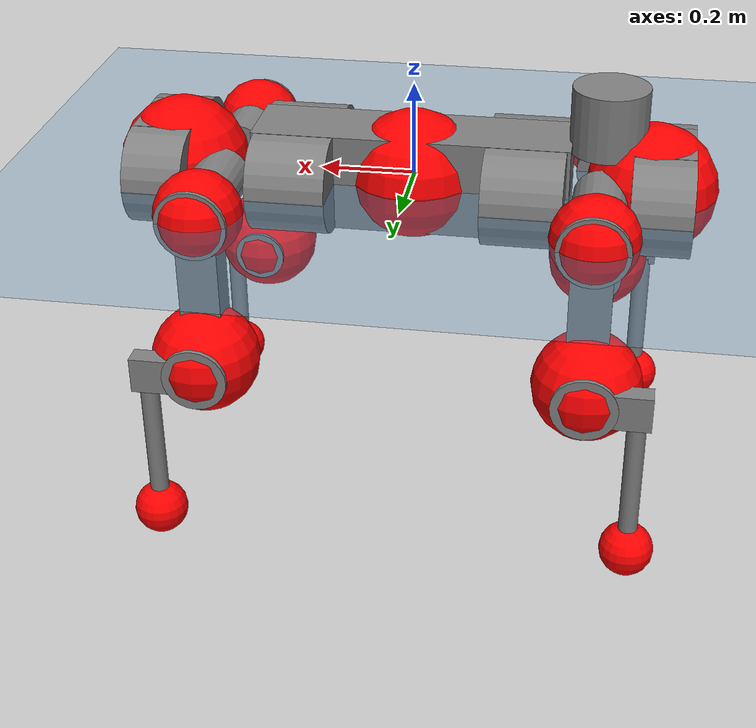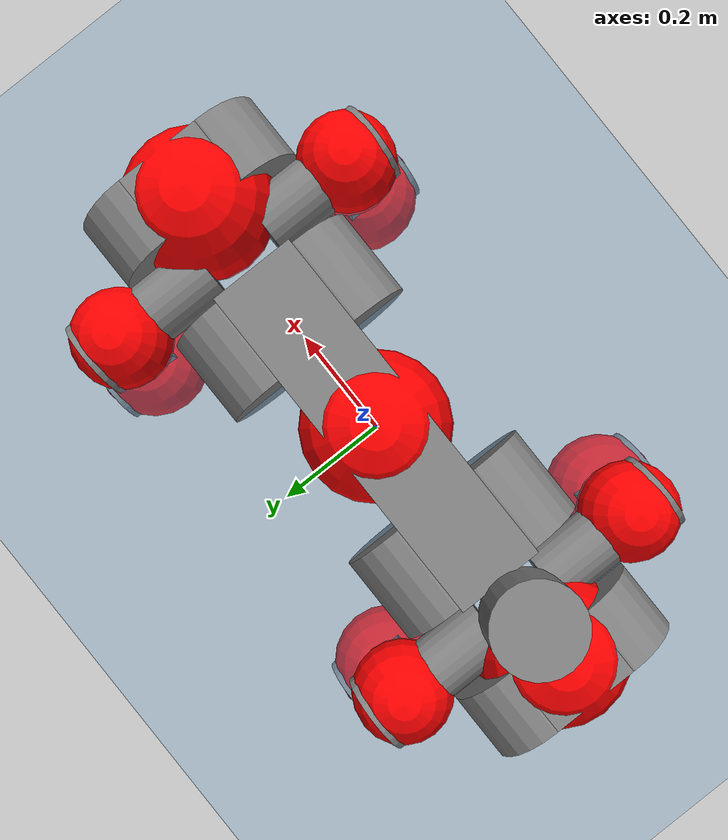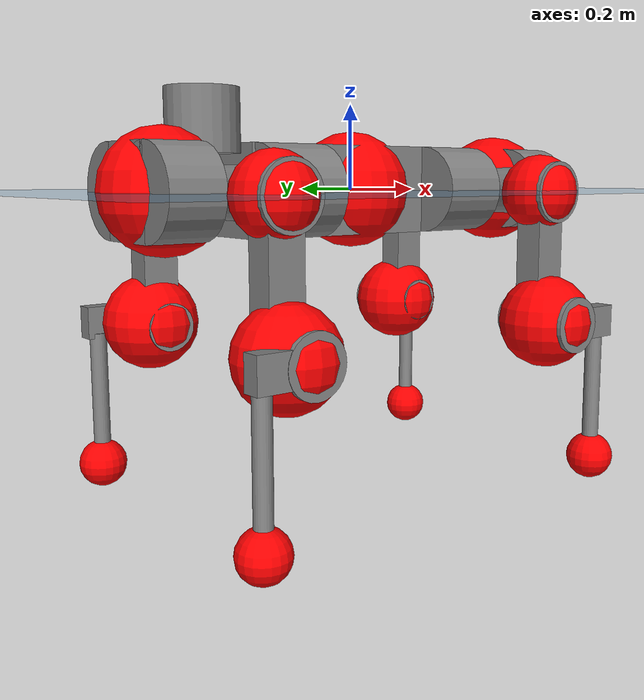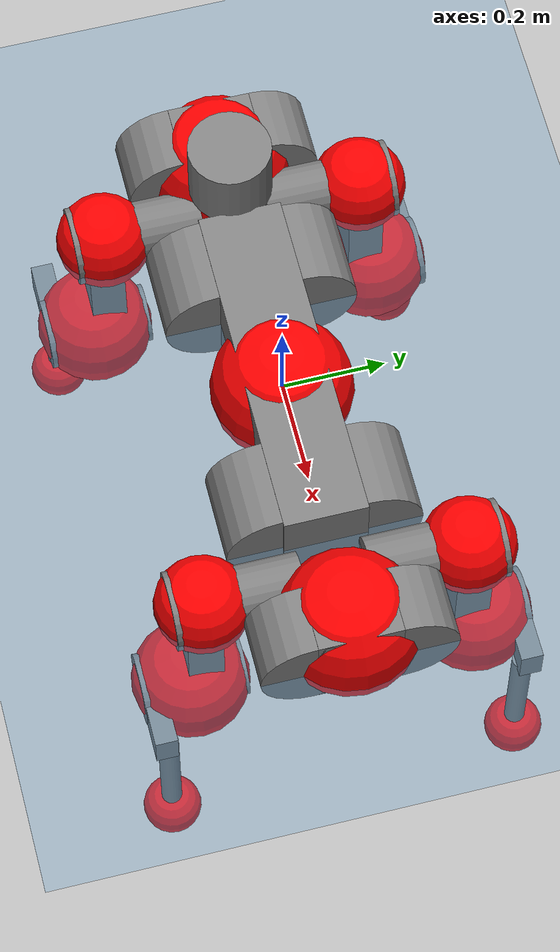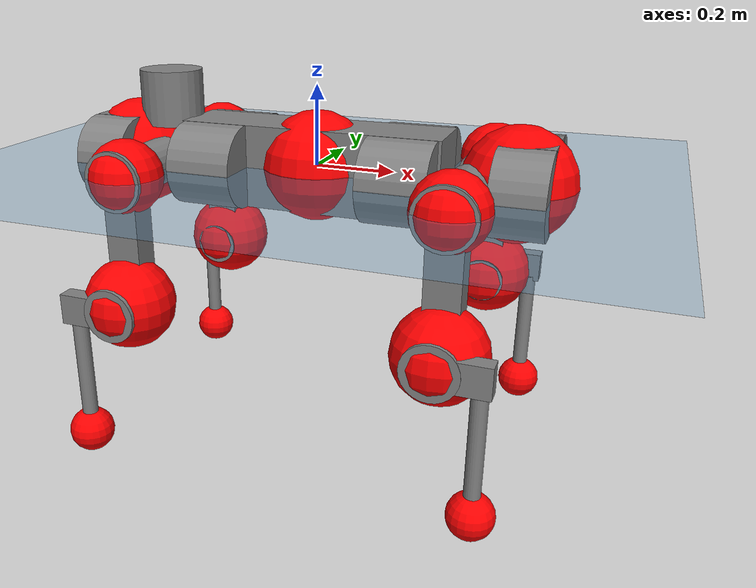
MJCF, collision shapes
<mujoco model="anymal_c">
  <compiler angle="radian" assetdir="assets" balanceinertia="true" inertiafromgeom="false"/>

  <option timestep="0.005" density="1.2" viscosity="2e-05"/>

  <size nkey="1"/>

  <visual>
    <quality shadowsize="8192"/>
    <map shadowclip="0.5"/>
  </visual>

  <default>
    <default class="/">
      <material specular="0" shininess="0.25"/>
      <geom contype="0" conaffinity="0" group="1" solref="-1000 -80"/>
      <site size="0.01 0.005 0.005" group="5"/>
      <general forcelimited="true" forcerange="-80 80" biastype="affine" gainprm="80" biasprm="0 -80 -2"/>
      <default class="anymal_c">
        <joint armature="0.01" damping="0.01" frictionloss="0.1"/>
        <default class="visual">
          <geom type="mesh" group="2"/>
          <default class="visual_zflip"/>
        </default>
        <default class="collision">
          <geom type="cylinder" group="3"/>
          <default class="foot">
            <geom size="0.03 0 0" type="sphere" condim="6" priority="1" friction="0.8 0.02 0.01" solimp="0.015 1 0.03"/>
          </default>
        </default>
      </default>
      <default class="reward_collision_sphere">
        <geom group="5" rgba="1 0 0 1"/>
      </default>
    </default>
  </default>

  <asset>
    <texture type="skybox" colorspace="auto" name="//unnamed_texture_0" builtin="gradient" rgb1="0.95 0.95 0.95" rgb2="0.95 0.95 0.95" width="100" height="600"/>
    <texture type="2d" colorspace="auto" name="texplane" builtin="checker" rgb1="0.345 0.575 0.748" rgb2="0.345 0.575 0.748" markrgb="1 1 1" width="512" height="512"/>
    <texture type="2d" colorspace="linear" name="base" file="base.png"/>
    <texture type="2d" colorspace="linear" name="top_shell" file="top_shell.png"/>
    <texture type="2d" colorspace="linear" name="bottom_shell" file="bottom_shell.png"/>
    <texture type="2d" colorspace="linear" name="remote" file="remote.png"/>
    <texture type="2d" colorspace="linear" name="hatch" file="hatch.png"/>
    <texture type="2d" colorspace="linear" name="handle" file="handle.png"/>
    <texture type="2d" colorspace="linear" name="face" file="face.png"/>
    <texture type="2d" colorspace="linear" name="battery" file="battery.png"/>
    <texture type="2d" colorspace="linear" name="lidar_cage" file="lidar_cage.png"/>
    <texture type="2d" colorspace="linear" name="depth_camera" file="depth_camera.png"/>
    <texture type="2d" colorspace="linear" name="wide_angle_camera" file="wide_angle_camera.png"/>
    <texture type="2d" colorspace="linear" name="lidar" file="lidar.png"/>
    <texture type="2d" colorspace="linear" name="drive" file="drive.png"/>
    <texture type="2d" colorspace="linear" name="hip_l" file="hip_l.png"/>
    <texture type="2d" colorspace="linear" name="shank_l" file="shank_l.png"/>
    <texture type="2d" colorspace="linear" name="foot" file="foot.png"/>
    <texture type="2d" colorspace="linear" name="thigh" file="thigh.png"/>
    <texture type="2d" colorspace="linear" name="shank_r" file="shank_r.png"/>
    <texture type="2d" colorspace="linear" name="hip_r" file="hip_r.png"/>
    <material name="MatPlane" class="/" texture="texplane" texuniform="true" texrepeat="2 2" specular="0.9" shininess="0.5"/>
    <material name="black_plastic" class="/" rgba="0.007 0.007 0.007 1"/>
    <material name="green" class="/" rgba="0.052 0.178 0.033 1"/>
    <material name="red" class="/" rgba="0.178 0.006 0.005 1"/>
    <material name="yellow" class="/" rgba="0.178 0.119 0.006 1"/>
    <material name="lwl" class="/" rgba="0.8 0.8 0.8 1"/>
    <material name="base" class="/" texture="base"/>
    <material name="top_shell" class="/" texture="top_shell"/>
    <material name="bottom_shell" class="/" texture="bottom_shell"/>
    <material name="hip_l" class="/" texture="hip_l"/>
    <material name="thigh" class="/" texture="thigh"/>
    <material name="shank_l" class="/" texture="shank_l"/>
    <material name="foot" class="/" texture="foot"/>
    <material name="hip_r" class="/" texture="hip_r"/>
    <material name="shank" class="/" texture="shank_r"/>
    <material name="hatch" class="/" texture="hatch"/>
    <material name="remote" class="/" texture="remote"/>
    <material name="handle" class="/" texture="handle"/>
    <material name="face" class="/" texture="face"/>
    <material name="depth_camera" class="/" texture="depth_camera"/>
    <material name="wide_angle_camera" class="/" texture="wide_angle_camera"/>
    <material name="battery" class="/" texture="battery"/>
    <material name="lidar_cage" class="/" texture="lidar_cage"/>
    <material name="lidar" class="/" texture="lidar"/>
    <material name="drive" class="/" texture="drive"/>
    <mesh name="base_0" class="/" file="base_0.obj"/>
    <mesh name="base_1" class="/" file="base_1.obj"/>
    <mesh name="base_2" class="/" file="base_2.obj"/>
    <mesh name="base_3" class="/" file="base_3.obj"/>
    <mesh name="base_4" class="/" file="base_4.obj"/>
    <mesh name="base_5" class="/" file="base_5.obj"/>
    <mesh name="top_shell" class="/" file="top_shell.obj"/>
    <mesh name="bottom_shell" class="/" file="bottom_shell.obj"/>
    <mesh name="remote" class="/" file="remote.obj"/>
    <mesh name="handle" class="/" file="handle.obj"/>
    <mesh name="face" class="/" file="face.obj"/>
    <mesh name="wide_angle_camera" class="/" file="wide_angle_camera.obj"/>
    <mesh name="depth_camera" class="/" file="depth_camera.obj"/>
    <mesh name="battery" class="/" file="battery.obj"/>
    <mesh name="lidar_cage" class="/" file="lidar_cage.obj"/>
    <mesh name="lidar" class="/" file="lidar.obj"/>
    <mesh name="drive" class="/" file="drive.obj"/>
    <mesh name="hip_l" class="/" file="hip_l.obj"/>
    <mesh name="thigh" class="/" file="thigh.obj"/>
    <mesh name="shank_l" class="/" file="shank_l.obj"/>
    <mesh name="foot" class="/" file="foot.obj"/>
    <mesh name="hip_r" class="/" file="hip_r.obj"/>
    <mesh name="hatch" class="/" file="hatch.obj"/>
    <mesh name="shank_r" class="/" file="shank_r.obj"/>
  </asset>

  <worldbody>
    <geom name="floor" class="/" size="100 100 0.125" type="plane" group="0" material="MatPlane"/>
    <light name="toplight_shadow" class="/" pos="0 0 5" dir="0.0990148 0.0990148 -0.990148" type="directional" ambient="0.04 0.04 0.04" diffuse="0.55 0.55 0.55" specular="0.12 0.12 0.12"/>
    <light name="toplight_fill" class="/" pos="0 0 5" dir="0.0990148 0.0990148 -0.990148" type="directional" castshadow="false" ambient="0.04 0.04 0.04" diffuse="0.3 0.3 0.3" specular="0.08 0.08 0.08"/>
    <body name="trunk" childclass="anymal_c" pos="0.000244594 -0.000488302 0.000274279" quat="1 -1.35871e-05 6.20094e-05 3.07649e-05">
      <inertial pos="0.00498823 7.63777e-05 0.052889" quat="0.511845 0.496268 0.501507 0.490125" mass="28.8405" diaginertia="1.06337 1.52688 0.380207"/>
      <joint name="//unnamed_joint_0" type="free" armature="0" damping="0" frictionloss="0"/>
      <geom name="//unnamed_geom_1" class="visual" material="green" mesh="base_0"/>
      <geom name="//unnamed_geom_2" class="visual" material="yellow" mesh="base_1"/>
      <geom name="//unnamed_geom_3" class="visual" material="red" mesh="base_2"/>
      <geom name="//unnamed_geom_4" class="visual" material="black_plastic" mesh="base_3"/>
      <geom name="//unnamed_geom_5" class="visual" material="lwl" mesh="base_4"/>
      <geom name="//unnamed_geom_6" class="visual" material="base" mesh="base_5"/>
      <geom name="trunk_1" class="collision" size="0.332775 0.080325 0.103275" type="box"/>
      <geom name="trunk_2" class="collision" size="0.103275 0.0831937" pos="0.241867 0.0848812 0" quat="0.707107 0 0.707107 0"/>
      <geom name="trunk_3" class="collision" size="0.103275 0.0831937" pos="-0.241867 0.0848812 0" quat="0.707107 0 0.707107 0"/>
      <geom name="trunk_4" class="collision" size="0.103275 0.0831937" pos="0.241867 -0.0848812 0" quat="0.707107 0 0.707107 0"/>
      <geom name="trunk_5" class="collision" size="0.103275 0.0831937" pos="-0.241867 -0.0848812 0" quat="0.707107 0 0.707107 0"/>
      <geom name="//unnamed_geom_12" class="visual" material="top_shell" mesh="top_shell"/>
      <geom name="//unnamed_geom_13" class="visual" material="bottom_shell" mesh="bottom_shell"/>
      <geom name="//unnamed_geom_14" class="visual" material="remote" mesh="remote"/>
      <geom name="//unnamed_geom_15" class="visual" material="handle" mesh="handle"/>
      <geom name="//unnamed_geom_16" class="visual" pos="0.460938 0 0" quat="1 0 0 0" material="face" mesh="face"/>
      <geom name="trunk_6" class="collision" size="0.0631125 0.080325 0.103275" pos="0.5221 0 0" type="box"/>
      <geom name="//unnamed_geom_18" class="collision" size="0.103275 0.0631125" pos="0.5221 0.0848812 0" quat="0.707107 0 0.707107 0"/>
      <geom name="//unnamed_geom_19" class="collision" size="0.103275 0.0631125" pos="0.5221 -0.0848812 0" quat="0.707107 0 0.707107 0"/>
      <geom name="//unnamed_geom_20" class="visual" pos="0.513371 0 -0.0326864" quat="0.965926 0 0.258819 0" material="depth_camera" mesh="depth_camera"/>
      <geom name="//unnamed_geom_21" class="visual" pos="0.570473 0 0.0167346" material="wide_angle_camera" mesh="wide_angle_camera"/>
      <geom name="//unnamed_geom_22" class="visual_zflip" pos="-0.460938 0 0" quat="0 0 0 1" material="face" mesh="face"/>
      <geom name="trunk_7" class="collision" size="0.0631125 0.080325 0.103275" pos="-0.5221 0 0" quat="0 0 0 1" type="box"/>
      <geom name="//unnamed_geom_24" class="collision" size="0.103275 0.0631125" pos="-0.5221 -0.0848812 0" quat="0 -0.707107 0 0.707107"/>
      <geom name="//unnamed_geom_25" class="collision" size="0.103275 0.0631125" pos="-0.5221 0.0848812 0" quat="0 -0.707107 0 0.707107"/>
      <geom name="//unnamed_geom_26" class="visual" pos="-0.513371 0 -0.0326864" quat="0 -0.258819 0 0.965926" material="depth_camera" mesh="depth_camera"/>
      <geom name="//unnamed_geom_27" class="visual_zflip" pos="-0.570473 0 0.0167346" quat="0 0 0 1" material="wide_angle_camera" mesh="wide_angle_camera"/>
      <geom name="//unnamed_geom_28" class="visual" material="battery" mesh="battery"/>
      <geom name="//unnamed_geom_29" class="visual" pos="0 0.0940342 0.0324299" quat="0.683013 -0.183013 0.183013 0.683013" material="depth_camera" mesh="depth_camera"/>
      <geom name="//unnamed_geom_30" class="visual" pos="0 -0.0940342 0.0324299" quat="0.683013 0.183013 0.183013 -0.683013" material="depth_camera" mesh="depth_camera"/>
      <geom name="//unnamed_geom_31" class="visual" pos="-0.40478 0 0.0821639" quat="1 0 0 0" material="lidar_cage" mesh="lidar_cage"/>
      <geom name="trunk_8" class="collision" size="0.080325 0.06885" pos="-0.40478 0 0.149236"/>
      <geom name="//unnamed_geom_33" class="visual" pos="-0.40478 3.95052e-05 0.158962" quat="0.707107 0 0 -0.707107" material="lidar" mesh="lidar"/>
      <geom name="//unnamed_geom_34" class="visual" pos="0.333499 0.126076 1.6338e-09" quat="0.258819 0.965926 0 0" material="drive" mesh="drive"/>
      <geom name="//unnamed_geom_35" class="visual" pos="0.333499 -0.126076 -1.6338e-09" quat="0.258819 -0.965926 0 0" material="drive" mesh="drive"/>
      <geom name="//unnamed_geom_36" class="visual" pos="-0.333499 0.126076 -1.6338e-09" quat="0 0 0.965926 -0.258819" material="drive" mesh="drive"/>
      <geom name="//unnamed_geom_37" class="visual" pos="-0.333499 -0.126076 1.6338e-09" quat="0 0 -0.965926 -0.258819" material="drive" mesh="drive"/>
      <geom name="//unnamed_geom_38" class="visual" pos="0.128996 0 0.0816049" quat="1 0 0 0" material="hatch" mesh="hatch"/>
      <geom name="//unnamed_geom_39" class="reward_collision_sphere" size="0.1377"/>
      <geom name="//unnamed_geom_40" class="reward_collision_sphere" size="0.1377" pos="0.500415 0 0"/>
      <geom name="//unnamed_geom_41" class="reward_collision_sphere" size="0.1377" pos="-0.500415 0 0"/>
      <site name="imu" pos="0.280261 0.0204906 0.0492378" size="0.011475"/>
      <camera name="track" pos="0 -2.42518 0" quat="0.707107 0.707107 0 0" mode="trackcom"/>
      <camera name="ego_camera" pos="0.500415 0 -0.044715" quat="-0.5 -0.5 0.5 0.5"/>
      <body name="LF_HIP" pos="0.33522 0.123285 -0.00103597" quat="0.258901 0.965904 6.44016e-05 -3.59404e-05">
        <inertial pos="0.0619047 -0.0183121 -0.00675168" quat="-0.129022 0.711444 -0.135809 0.677316" mass="4.2189" diaginertia="0.00997295 0.0130765 0.00567427"/>
        <joint name="LF_HAA" pos="0 0 0" axis="0.999995 -0.00157212 0.00281787" range="-0.782133 0.534528" armature="0.0116855" damping="0.0059962" frictionloss="0.122769"/>
        <geom name="//unnamed_geom_42" class="visual" pos="0 9.61092e-05 -1.57859e-05" quat="0.258819 -0.965926 0 0" material="hip_l" mesh="hip_l"/>
        <geom name="//unnamed_geom_43" class="visual" pos="0.0666108 -0.0820035 -0.0466442" quat="0.183013 -0.683013 0.683013 0.183013" material="drive" mesh="drive"/>
        <geom name="//unnamed_geom_44" class="collision" size="0.057375 0.080325" pos="0.0666108 -0.0145023 -0.00771893" quat="-0.353553 -0.612372 0.612372 -0.353553"/>
        <body name="LF_THIGH" pos="0.0668285 -0.0909117 -0.0486706" quat="0.182971 -0.683215 0.682951 0.18253">
          <inertial pos="0.0354323 0.00192681 -0.273298" quat="0.993134 -0.00690376 -0.0822691 0.0828749" mass="4.6396" diaginertia="0.0513287 0.0781702 0.00701421"/>
          <joint name="LF_HFE" pos="0 0 0" axis="0.999999 -0.000894562 -0.00083683" stiffness="0.00761004" range="-3.09477 3.11042" armature="0.0115103" damping="0.0220102" frictionloss="0.130293"/>
          <geom name="//unnamed_geom_45" class="visual" pos="-0.00200064 -3.15254e-06 0" quat="0.707107 0 0 -0.707107" material="thigh" mesh="thigh"/>
          <geom name="//unnamed_geom_46" class="collision" size="0.0745875 0.0459" pos="0.0444814 0 0" quat="0.5 0.5 -0.5 -0.5"/>
          <geom name="//unnamed_geom_47" class="collision" size="0.0430312 0.034425 0.162158" pos="0.033361 0 -0.157972" quat="0.707107 0 0 -0.707107" type="box"/>
          <geom name="//unnamed_geom_48" class="visual" pos="0.111537 0 -0.318595" quat="1 0 0 0" material="drive" mesh="drive"/>
          <geom name="//unnamed_geom_49" class="collision" size="0.057375 0.080325" pos="0.0336946 0 -0.318595" quat="0.707107 0 0.707107 0"/>
          <geom name="//unnamed_geom_50" class="reward_collision_sphere" size="0.0918" pos="0.0278008 0 0"/>
          <body name="LF_SHANK" pos="0.10866 0.00136835 -0.321509" quat="0.999999 0.00047651 -0.000850125 0.000607934">
            <inertial pos="0.00765329 -0.0745012 -0.0877273" quat="0.992891 -0.116383 -0.00151005 -0.0249097" mass="0.87497" diaginertia="0.0170699 0.0235616 0.00199599"/>
            <joint name="LF_KFE" pos="0 0 0" axis="0.999991 0.00435237 6.94112e-06" range="-3.09446 3.12483" armature="0.010545" damping="0.00793502" frictionloss="0.112366"/>
            <geom name="//unnamed_geom_51" class="visual" pos="-0.000652365 -0.00347844 0" quat="0.707107 0 0 -0.707107" material="shank_l" mesh="shank_l"/>
            <geom name="LF_kfe_act" class="collision" size="0.06885 0.02295" pos="0.0222407 0 0" quat="0.5 0.5 -0.5 -0.5"/>
            <geom name="//unnamed_geom_53" class="collision" size="0.0659801 0.0387281 0.0218025" pos="0.0222407 -0.0697226 0" quat="0.5 0.5 -0.5 -0.5" type="box"/>
            <geom name="//unnamed_geom_54" class="visual" pos="0.0145122 -0.107768 -0.377809" quat="0.382683 0 0 -0.92388" material="foot" mesh="foot"/>
            <geom name="LF_calf" class="collision" size="0.0200812 0.162087" pos="0.014512 -0.106647 -0.188904" quat="0.707107 0 0 -0.707107"/>
            <geom name="LF_foot" class="foot" size="0.0306142" pos="0.014512 -0.106647 -0.352656" quat="0.707107 0 0 -0.707107"/>
            <geom name="//unnamed_geom_57" class="reward_collision_sphere" size="0.11475" pos="-0.0556017 0 0"/>
            <geom name="//unnamed_geom_58" class="reward_collision_sphere" size="0.057375" pos="0.014512 -0.106647 -0.352656"/>
            <site name="LF_foot" class="foot" pos="0.014512 -0.106647 -0.352656" quat="0.707107 0 0 -0.707107" size="0.011475"/>
          </body>
        </body>
      </body>
      <body name="RF_HIP" pos="0.333076 -0.127588 -0.00287403" quat="0.259088 -0.965854 -6.97971e-05 1.31577e-05">
        <inertial pos="0.0604649 0.0212524 -0.00702552" quat="0.13513 0.680338 0.127724 0.70892" mass="4.24094" diaginertia="0.00964992 0.0134312 0.00576887"/>
        <joint name="RF_HAA" pos="0 0 0" axis="0.999965 -0.00838587 0.000597144" range="-0.495192 0.736763" armature="0.0129298" damping="0.0247561" frictionloss="0.130131"/>
        <geom name="//unnamed_geom_59" class="visual" pos="0 -9.61084e-05 -1.57858e-05" quat="0.258819 0.965926 0 0" material="hip_r" mesh="hip_r"/>
        <geom name="//unnamed_geom_60" class="visual" pos="0.0666108 0.0820035 -0.0466442" quat="0.183013 0.683013 0.683013 -0.183013" material="drive" mesh="drive"/>
        <geom name="//unnamed_geom_61" class="collision" size="0.057375 0.080325" pos="0.0666108 0.0145023 -0.00771893" quat="-0.353553 0.612372 0.612372 0.353553"/>
        <body name="RF_THIGH" pos="0.0652363 0.0847802 -0.0445124" quat="0.183069 0.682395 0.683231 -0.184441">
          <inertial pos="0.0319241 0.00274639 -0.274038" quat="0.992371 0.00327037 -0.0846395 0.0895832" mass="4.69739" diaginertia="0.0514294 0.0781811 0.00705104"/>
          <joint name="RF_HFE" pos="0 0 0" axis="0.999999 0.00101834 -0.000891883" range="-3.10812 3.14495" armature="0.0118261" damping="0.0244075" frictionloss="0.115851"/>
          <geom name="//unnamed_geom_62" class="visual" pos="-0.00200064 -3.15254e-06 0" quat="0.707107 0 0 -0.707107" material="thigh" mesh="thigh"/>
          <geom name="//unnamed_geom_63" class="collision" size="0.0745875 0.0459" pos="0.0444814 0 0" quat="0.5 0.5 0.5 0.5"/>
          <geom name="//unnamed_geom_64" class="collision" size="0.0430312 0.034425 0.162158" pos="0.033361 0 -0.157972" quat="0.707107 0 0 0.707107" type="box"/>
          <geom name="//unnamed_geom_65" class="visual" pos="0.111537 0 -0.318595" quat="1 0 0 0" material="drive" mesh="drive"/>
          <geom name="//unnamed_geom_66" class="collision" size="0.057375 0.080325" pos="0.0336946 0 -0.318595" quat="0.707107 0 0.707107 0"/>
          <geom name="//unnamed_geom_67" class="reward_collision_sphere" size="0.0918" pos="0.0278008 0 0"/>
          <body name="RF_SHANK" pos="0.112965 0.00141129 -0.320311" quat="1 -0.000193376 8.52317e-05 -9.80478e-05">
            <inertial pos="0.00896451 0.0743743 -0.0887979" quat="0.993775 0.108922 0.00394951 0.0230626" mass="0.888476" diaginertia="0.0176932 0.0242091 0.00201173"/>
            <joint name="RF_KFE" pos="0 0 0" axis="0.999942 0.0034145 0.0102534" range="-3.09424 3.1257" armature="0.0106537" damping="0.000678539" frictionloss="0.116993"/>
            <geom name="//unnamed_geom_68" class="visual" pos="-0.000652361 0.00347843 0" quat="0.707107 0 0 0.707107" material="shank" mesh="shank_r"/>
            <geom name="RF_kfe_act" class="collision" size="0.06885 0.02295" pos="0.0222407 0 0" quat="0.5 0.5 0.5 0.5"/>
            <geom name="//unnamed_geom_70" class="collision" size="0.0659801 0.0387281 0.0218025" pos="0.0222407 0.0697226 0" quat="0.5 0.5 0.5 0.5" type="box"/>
            <geom name="//unnamed_geom_71" class="visual" pos="0.0145119 0.107768 -0.377809" quat="0.382683 0 0 0.92388" material="foot" mesh="foot"/>
            <geom name="RF_calf" class="collision" size="0.0200812 0.162087" pos="0.014512 0.106647 -0.188904" quat="0.707107 0 0 0.707107"/>
            <geom name="RF_foot" class="foot" size="0.0273339" pos="0.014512 0.106647 -0.352656" quat="0.707107 0 0 0.707107"/>
            <geom name="//unnamed_geom_74" class="reward_collision_sphere" size="0.11475" pos="-0.0556017 0 0"/>
            <geom name="//unnamed_geom_75" class="reward_collision_sphere" size="0.057375" pos="0.014512 0.106647 -0.352656"/>
            <site name="RF_foot" class="foot" pos="0.014512 0.106647 -0.352656" quat="0.707107 0 0 0.707107" size="0.011475"/>
          </body>
        </body>
      </body>
      <body name="LH_HIP" pos="-0.33104 0.126344 0.00410502" quat="0.000443287 0.00112975 0.966184 -0.257849">
        <inertial pos="0.0624338 0.0185002 -0.00712406" quat="0.126088 0.685492 0.131555 0.704908" mass="4.47766" diaginertia="0.0103155 0.0132892 0.00596836"/>
        <joint name="LH_HAA" pos="0 0 0" axis="0.999953 -0.00890869 -0.00390222" range="-0.453969 0.669896" armature="0.0117953" damping="0.00643782" frictionloss="0.12567"/>
        <geom name="//unnamed_geom_76" class="visual" pos="0 -9.61084e-05 -1.57858e-05" quat="-0.258819 -0.965926 0 0" material="hip_r" mesh="hip_r"/>
        <geom name="//unnamed_geom_77" class="visual" pos="0.0666108 0.0820035 -0.0466442" quat="0.183013 0.683013 0.683013 -0.183013" material="drive" mesh="drive"/>
        <geom name="//unnamed_geom_78" class="collision" size="0.057375 0.080325" pos="0.0666108 0.0145023 -0.00771893" quat="-0.353553 0.612372 0.612372 0.353553"/>
        <body name="LH_THIGH" pos="0.0645736 0.0889203 -0.0443811" quat="0.183131 0.683474 0.682238 -0.184058">
          <inertial pos="0.0337549 -0.000851222 -0.272736" quat="0.991922 -0.00908712 -0.0898151 0.0891195" mass="4.61402" diaginertia="0.0515302 0.0836405 0.00752032"/>
          <joint name="LH_HFE" pos="0 0 0" axis="1 6.75693e-05 -2.92641e-05" range="-3.15046 3.17529" armature="0.0100572" damping="0.008626" frictionloss="0.112603"/>
          <geom name="//unnamed_geom_79" class="visual" pos="-0.00200064 -3.15254e-06 0" quat="0.707107 0 0 -0.707107" material="thigh" mesh="thigh"/>
          <geom name="//unnamed_geom_80" class="collision" size="0.0745875 0.0459" pos="0.0444814 0 0" quat="0.5 0.5 -0.5 -0.5"/>
          <geom name="//unnamed_geom_81" class="collision" size="0.0430312 0.034425 0.162158" pos="0.033361 0 -0.157972" quat="0.707107 0 0 -0.707107" type="box"/>
          <geom name="//unnamed_geom_82" class="visual" pos="0.111537 0 -0.318595" quat="1 0 0 0" material="drive" mesh="drive"/>
          <geom name="//unnamed_geom_83" class="collision" size="0.057375 0.080325" pos="0.0336946 0 -0.318595" quat="0.707107 0 0.707107 0"/>
          <geom name="//unnamed_geom_84" class="reward_collision_sphere" size="0.0918" pos="0.0278008 0 0"/>
          <body name="LH_SHANK" pos="0.109886 0.00317967 -0.315621" quat="0.999999 -0.000977349 0.00041167 0.000819438">
            <inertial pos="0.00585221 0.0742177 -0.091534" quat="0.992878 0.116834 -0.000784098 0.0233021" mass="0.93032" diaginertia="0.0175536 0.0249113 0.00201098"/>
            <joint name="LH_KFE" pos="0 0 0" axis="0.999976 -0.0059393 -0.00345954" range="-3.19158 3.12755" armature="0.0108963" damping="0" frictionloss="0.120076"/>
            <geom name="//unnamed_geom_85" class="visual" pos="-0.000652361 0.00347843 0" quat="-0.707107 0 0 -0.707107" material="shank" mesh="shank_r"/>
            <geom name="LH_kfe_act" class="collision" size="0.06885 0.02295" pos="0.0222407 0 0" quat="0.5 0.5 -0.5 -0.5"/>
            <geom name="//unnamed_geom_87" class="collision" size="0.0659801 0.0387281 0.0218025" pos="0.0222407 0.0697226 0" quat="0.5 0.5 -0.5 -0.5" type="box"/>
            <geom name="//unnamed_geom_88" class="visual" pos="0.0145119 0.107768 -0.377809" quat="-0.382683 0 0 -0.92388" material="foot" mesh="foot"/>
            <geom name="LH_calf" class="collision" size="0.0200812 0.162087" pos="0.014512 0.106647 -0.188904" quat="0.707107 0 0 -0.707107"/>
            <geom name="LH_foot" class="foot" size="0.038606" pos="0.014512 0.106647 -0.352656" quat="0.707107 0 0 -0.707107"/>
            <geom name="//unnamed_geom_91" class="reward_collision_sphere" size="0.11475" pos="-0.0556017 0 0"/>
            <geom name="//unnamed_geom_92" class="reward_collision_sphere" size="0.057375" pos="0.014512 0.106647 -0.352656"/>
            <site name="LH_foot" class="foot" pos="0.014512 0.106647 -0.352656" quat="0.707107 0 0 -0.707107" size="0.011475"/>
          </body>
        </body>
      </body>
      <body name="RH_HIP" pos="-0.330907 -0.129036 -0.00156455" quat="3.52862e-05 -2.73416e-05 -0.965926 -0.258819">
        <inertial pos="0.0654602 -0.0189255 -0.0108727" quat="-0.123556 0.70624 -0.145156 0.681827" mass="4.27478" diaginertia="0.0103017 0.0136675 0.00578763"/>
        <joint name="RH_HAA" pos="0 0 0" axis="0.999992 -0.00139181 -0.00374258" stiffness="0.00899162" range="-0.746044 0.517657" armature="0.0113616" damping="0.00348306" frictionloss="0.118201"/>
        <geom name="//unnamed_geom_93" class="visual" pos="0 9.61092e-05 -1.57859e-05" quat="-0.258819 0.965926 0 0" material="hip_l" mesh="hip_l"/>
        <geom name="//unnamed_geom_94" class="visual" pos="0.0666108 -0.0820035 -0.0466442" quat="-0.183013 0.683013 -0.683013 -0.183013" material="drive" mesh="drive"/>
        <geom name="//unnamed_geom_95" class="collision" size="0.057375 0.080325" pos="0.0666108 -0.0145023 -0.00771893" quat="0.353553 0.612372 -0.612372 0.353553"/>
        <body name="RH_THIGH" pos="0.0655218 -0.0872385 -0.0458374" quat="-0.183626 0.682954 -0.682887 -0.183089">
          <inertial pos="0.0346431 0.00122918 -0.272675" quat="0.99335 -0.000259006 -0.0726781 0.0892934" mass="4.49543" diaginertia="0.0503313 0.0757356 0.00714798"/>
          <joint name="RH_HFE" pos="0 0 0" axis="0.999981 -0.00439412 0.0042185" range="-3.10482 3.18482" armature="0.0117661" damping="0.0055432" frictionloss="0.124666"/>
          <geom name="//unnamed_geom_96" class="visual" pos="-0.00200064 -3.15254e-06 0" quat="0.707107 0 0 -0.707107" material="thigh" mesh="thigh"/>
          <geom name="//unnamed_geom_97" class="collision" size="0.0745875 0.0459" pos="0.0444814 0 0" quat="0.5 0.5 0.5 0.5"/>
          <geom name="//unnamed_geom_98" class="collision" size="0.0430312 0.034425 0.162158" pos="0.033361 0 -0.157972" quat="0.707107 0 0 0.707107" type="box"/>
          <geom name="//unnamed_geom_99" class="visual" pos="0.111537 0 -0.318595" quat="1 0 0 0" material="drive" mesh="drive"/>
          <geom name="//unnamed_geom_100" class="collision" size="0.057375 0.080325" pos="0.0336946 0 -0.318595" quat="0.707107 0 0.707107 0"/>
          <geom name="//unnamed_geom_101" class="reward_collision_sphere" size="0.0918" pos="0.0278008 0 0"/>
          <body name="RH_SHANK" pos="0.115509 0.00305071 -0.316007" quat="0.999999 -0.00107311 0.000642151 0.000503291">
            <inertial pos="0.00294587 -0.0739849 -0.0927639" quat="0.991928 -0.122788 0.00941071 -0.0302079" mass="0.882159" diaginertia="0.0168353 0.0231905 0.00198109"/>
            <joint name="RH_KFE" pos="0 0 0" axis="0.999976 -0.00263582 0.00648472" range="-3.13291 3.10813" armature="0.0121487" damping="0.00907358" frictionloss="0.110094"/>
            <geom name="//unnamed_geom_102" class="visual" pos="-0.000652365 -0.00347844 0" quat="0.707107 0 0 -0.707107" material="shank_l" mesh="shank_l"/>
            <geom name="RH_kfe_act" class="collision" size="0.06885 0.02295" pos="0.0222407 0 0" quat="0.5 0.5 0.5 0.5"/>
            <geom name="//unnamed_geom_104" class="collision" size="0.0659801 0.0387281 0.0218025" pos="0.0222407 -0.0697226 0" quat="0.5 0.5 0.5 0.5" type="box"/>
            <geom name="//unnamed_geom_105" class="visual" pos="0.0145122 -0.107768 -0.377809" quat="0.382683 0 0 -0.92388" material="foot" mesh="foot"/>
            <geom name="RH_calf" class="collision" size="0.0200812 0.162087" pos="0.014512 -0.106647 -0.188904" quat="0.707107 0 0 0.707107"/>
            <geom name="RH_foot" class="foot" size="0.0296689" pos="0.014512 -0.106647 -0.352656" quat="0.707107 0 0 0.707107"/>
            <geom name="//unnamed_geom_108" class="reward_collision_sphere" size="0.11475" pos="-0.0556017 0 0"/>
            <geom name="//unnamed_geom_109" class="reward_collision_sphere" size="0.057375" pos="0.014512 -0.106647 -0.352656"/>
            <site name="RH_foot" class="foot" pos="0.014512 -0.106647 -0.352656" quat="0.707107 0 0 0.707107" size="0.011475"/>
          </body>
        </body>
      </body>
    </body>
  </worldbody>

  <contact>
    <pair class="/" geom1="floor" geom2="LF_foot" name="//unnamed_contact_0"/>
    <pair class="/" geom1="floor" geom2="RF_foot" name="//unnamed_contact_1"/>
    <pair class="/" geom1="floor" geom2="LH_foot" name="//unnamed_contact_2"/>
    <pair class="/" geom1="floor" geom2="RH_foot" name="//unnamed_contact_3"/>
  </contact>

  <actuator>
    <general name="LF_HAA" class="/" joint="LF_HAA" forcerange="-81.1246 81.1246" gainprm="88.9048" biasprm="0 -88.9048 -2.45852"/>
    <general name="LF_HFE" class="/" joint="LF_HFE" forcerange="-86.3635 86.3635" gainprm="88.9048" biasprm="0 -88.9048 -2.45852"/>
    <general name="LF_KFE" class="/" joint="LF_KFE" forcerange="-84.5394 84.5394" gainprm="88.9048" biasprm="0 -88.9048 -2.45852"/>
    <general name="RF_HAA" class="/" joint="RF_HAA" forcerange="-86.5415 86.5415" gainprm="88.9048" biasprm="0 -88.9048 -2.45852"/>
    <general name="RF_HFE" class="/" joint="RF_HFE" forcerange="-86.859 86.859" gainprm="88.9048" biasprm="0 -88.9048 -2.45852"/>
    <general name="RF_KFE" class="/" joint="RF_KFE" forcerange="-96.9963 96.9963" gainprm="88.9048" biasprm="0 -88.9048 -2.45852"/>
    <general name="LH_HAA" class="/" joint="LH_HAA" forcerange="-87.1898 87.1898" gainprm="88.9048" biasprm="0 -88.9048 -2.45852"/>
    <general name="LH_HFE" class="/" joint="LH_HFE" forcerange="-99.5962 99.5962" gainprm="88.9048" biasprm="0 -88.9048 -2.45852"/>
    <general name="LH_KFE" class="/" joint="LH_KFE" forcerange="-85.5686 85.5686" gainprm="88.9048" biasprm="0 -88.9048 -2.45852"/>
    <general name="RH_HAA" class="/" joint="RH_HAA" forcerange="-99.4408 99.4408" gainprm="88.9048" biasprm="0 -88.9048 -2.45852"/>
    <general name="RH_HFE" class="/" joint="RH_HFE" forcerange="-89.0759 89.0759" gainprm="88.9048" biasprm="0 -88.9048 -2.45852"/>
    <general name="RH_KFE" class="/" joint="RH_KFE" forcerange="-92.981 92.981" gainprm="88.9048" biasprm="0 -88.9048 -2.45852"/>
  </actuator>

  <sensor>
    <gyro site="imu" name="imu_angular_velocity"/>
    <velocimeter site="imu" name="imu_linear_velocity"/>
    <framelinvel objtype="site" objname="LF_foot" name="LF_foot_global_linear_velocity"/>
    <framelinvel objtype="site" objname="RF_foot" name="RF_foot_global_linear_velocity"/>
    <framelinvel objtype="site" objname="LH_foot" name="LH_foot_global_linear_velocity"/>
    <framelinvel objtype="site" objname="RH_foot" name="RH_foot_global_linear_velocity"/>
  </sensor>

  <keyframe>
    <key name="home" qpos="0 0 0.55 1 0 0 0 0 0.4 -0.8 0 -0.4 0.8 0 -0.4 0.8 0 0.4 -0.8"/>
  </keyframe>
</mujoco>
